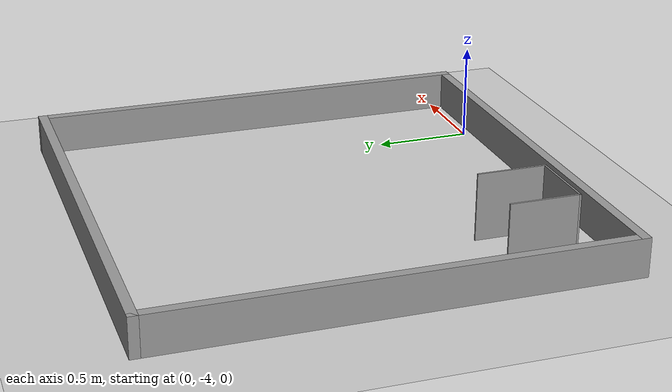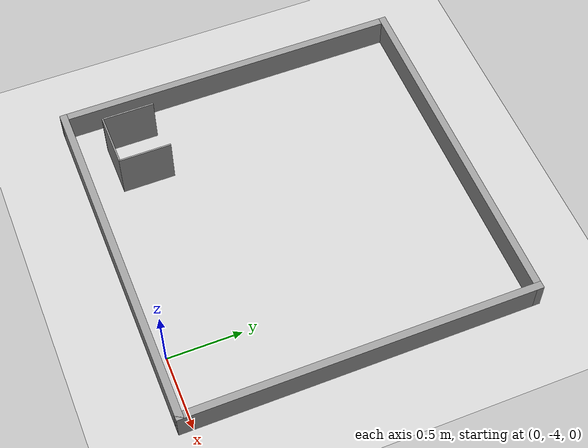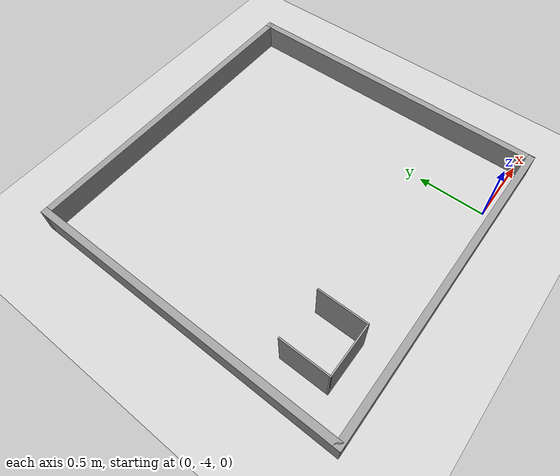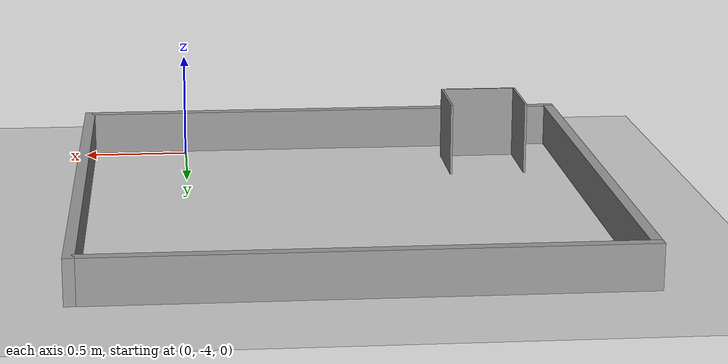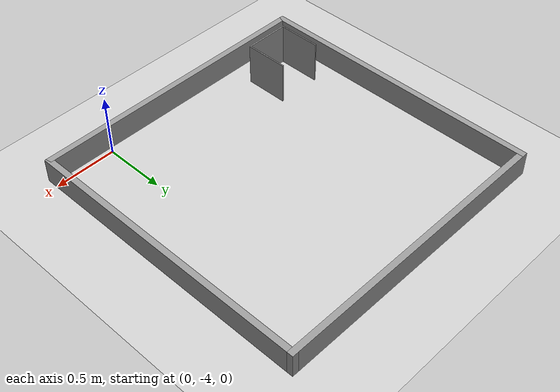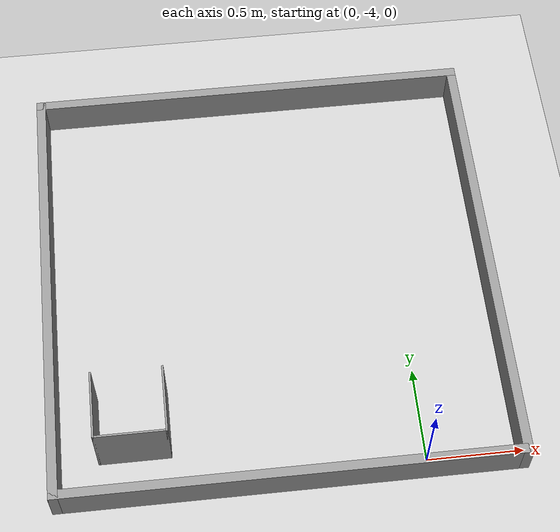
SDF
<sdf version="1.6">
 <world name="default">
  <model name="ground_plane">
   <static>1</static>
   <link name="link">
    <collision name="collision">
     <geometry><plane><normal>0 0 1</normal><size>100 100</size></plane></geometry>
     <surface><friction><ode><mu>100</mu><mu2>50</mu2></ode></friction></surface>
    </collision>
    <visual name="visual">
     <cast_shadows>0</cast_shadows>
     <geometry><plane><normal>0 0 1</normal><size>100 100</size></plane></geometry>
     <material>
      <script><uri>file://media/materials/scripts/gazebo.material</uri><name>Gazebo/Grey</name></script>
     </material>
    </visual>
   </link>
  </model>
  <model name="final_arena_0">
   <link name="Wall_0">
    <pose>0 -1.175 0 0 -0 0</pose>
    <inertial>
     <mass>1</mass>
     <inertia><ixx>1</ixx><ixy>0</ixy><ixz>0</ixz><iyy>1</iyy><iyz>0</iyz><izz>1</izz></inertia>
    </inertial>
    <visual name="Wall_0_Visual">
     <pose>0 0 0.1 0 -0 0</pose>
     <geometry><box><size>2.4 0.05 0.2</size></box></geometry>
     <material>
      <script><uri>file://media/materials/scripts/gazebo.material</uri><name>Gazebo/Grey</name></script>
      <ambient>0.3 0.3 0.3 1</ambient>
      <diffuse>0 0 0 1</diffuse>
      <specular>0 0 0 1</specular>
      <emissive>0 0 0 1</emissive>
      <shader type="vertex"><normal_map>__default__</normal_map></shader>
     </material>
    </visual>
    <collision name="Wall_0_Collision">
     <pose>0 0 0.1 0 -0 0</pose>
     <geometry><box><size>2.4 0.05 0.2</size></box></geometry>
     <surface>
      <friction>
       <ode><mu>1</mu><mu2>1</mu2><fdir1>0 0 0</fdir1><slip1>0</slip1><slip2>0</slip2></ode>
       <torsional>
        <coefficient>1</coefficient>
        <patch_radius>0</patch_radius>
        <surface_radius>0</surface_radius>
        <use_patch_radius>1</use_patch_radius>
        <ode><slip>0</slip></ode>
       </torsional>
      </friction>
      <bounce><restitution_coefficient>0</restitution_coefficient><threshold>1e+06</threshold></bounce>
      <contact>
       <collide_without_contact>0</collide_without_contact>
       <collide_without_contact_bitmask>1</collide_without_contact_bitmask>
       <collide_bitmask>1</collide_bitmask>
       <ode>
        <soft_cfm>0</soft_cfm>
        <soft_erp>0.2</soft_erp>
        <kp>1e+13</kp>
        <kd>1</kd>
        <max_vel>0.01</max_vel>
        <min_depth>0</min_depth>
       </ode>
       <bullet>
        <split_impulse>1</split_impulse>
        <split_impulse_penetration_threshold>-0.01</split_impulse_penetration_threshold>
        <soft_cfm>0</soft_cfm>
        <soft_erp>0.2</soft_erp>
        <kp>1e+13</kp>
        <kd>1</kd>
       </bullet>
      </contact>
     </surface>
    </collision>
   </link>
   <link name="Wall_11">
    <pose>-0.955 -0.7825 0 0 -0 1.5708</pose>
    <visual name="Wall_11_Visual">
     <pose>0 0 0.1725 0 -0 0</pose>
     <geometry><box><size>0.355 0.01 0.345</size></box></geometry>
     <material>
      <script><uri>file://media/materials/scripts/gazebo.material</uri><name>Gazebo/Grey</name></script>
      <ambient>1 1 1 1</ambient>
      <diffuse>0.7 0.7 0.7 1</diffuse>
      <specular>0.01 0.01 0.01 1</specular>
      <emissive>0 0 0 1</emissive>
     </material>
    </visual>
    <collision name="Wall_11_Collision">
     <pose>0 0 0.1725 0 -0 0</pose>
     <geometry><box><size>0.355 0.01 0.345</size></box></geometry>
     <surface>
      <friction>
       <ode><mu>1</mu><mu2>1</mu2><fdir1>0 0 0</fdir1><slip1>0</slip1><slip2>0</slip2></ode>
       <torsional>
        <coefficient>1</coefficient>
        <patch_radius>0</patch_radius>
        <surface_radius>0</surface_radius>
        <use_patch_radius>1</use_patch_radius>
        <ode><slip>0</slip></ode>
       </torsional>
      </friction>
      <bounce><restitution_coefficient>0</restitution_coefficient><threshold>1e+06</threshold></bounce>
      <contact>
       <collide_without_contact>0</collide_without_contact>
       <collide_without_contact_bitmask>1</collide_without_contact_bitmask>
       <collide_bitmask>1</collide_bitmask>
       <ode>
        <soft_cfm>0</soft_cfm>
        <soft_erp>0.2</soft_erp>
        <kp>1e+13</kp>
        <kd>1</kd>
        <max_vel>0.01</max_vel>
        <min_depth>0</min_depth>
       </ode>
       <bullet>
        <split_impulse>1</split_impulse>
        <split_impulse_penetration_threshold>-0.01</split_impulse_penetration_threshold>
        <soft_cfm>0</soft_cfm>
        <soft_erp>0.2</soft_erp>
        <kp>1e+13</kp>
        <kd>1</kd>
       </bullet>
      </contact>
     </surface>
    </collision>
   </link>
   <link name="Wall_13">
    <pose>-0.774 -0.955 0 0 -0 0</pose>
    <visual name="Wall_13_Visual">
     <pose>0 0 0.1725 0 -0 0</pose>
     <geometry><box><size>0.372 0.01 0.345</size></box></geometry>
     <material>
      <script><uri>file://media/materials/scripts/gazebo.material</uri><name>Gazebo/Grey</name></script>
      <ambient>1 1 1 1</ambient>
      <diffuse>0.7 0.7 0.7 1</diffuse>
      <specular>0.01 0.01 0.01 1</specular>
      <emissive>0 0 0 1</emissive>
     </material>
    </visual>
    <collision name="Wall_13_Collision">
     <pose>0 0 0.1725 0 -0 0</pose>
     <geometry><box><size>0.372 0.01 0.345</size></box></geometry>
     <surface>
      <friction>
       <ode><mu>1</mu><mu2>1</mu2><fdir1>0 0 0</fdir1><slip1>0</slip1><slip2>0</slip2></ode>
       <torsional>
        <coefficient>1</coefficient>
        <patch_radius>0</patch_radius>
        <surface_radius>0</surface_radius>
        <use_patch_radius>1</use_patch_radius>
        <ode><slip>0</slip></ode>
       </torsional>
      </friction>
      <bounce><restitution_coefficient>0</restitution_coefficient><threshold>1e+06</threshold></bounce>
      <contact>
       <collide_without_contact>0</collide_without_contact>
       <collide_without_contact_bitmask>1</collide_without_contact_bitmask>
       <collide_bitmask>1</collide_bitmask>
       <ode>
        <soft_cfm>0</soft_cfm>
        <soft_erp>0.2</soft_erp>
        <kp>1e+13</kp>
        <kd>1</kd>
        <max_vel>0.01</max_vel>
        <min_depth>0</min_depth>
       </ode>
       <bullet>
        <split_impulse>1</split_impulse>
        <split_impulse_penetration_threshold>-0.01</split_impulse_penetration_threshold>
        <soft_cfm>0</soft_cfm>
        <soft_erp>0.2</soft_erp>
        <kp>1e+13</kp>
        <kd>1</kd>
       </bullet>
      </contact>
     </surface>
    </collision>
   </link>
   <link name="Wall_15">
    <pose>-0.593 -0.7825 0 0 -0 1.5708</pose>
    <visual name="Wall_15_Visual">
     <pose>0 0 0.1725 0 -0 0</pose>
     <geometry><box><size>0.355 0.01 0.345</size></box></geometry>
     <material>
      <script><uri>file://media/materials/scripts/gazebo.material</uri><name>Gazebo/Grey</name></script>
      <ambient>1 1 1 1</ambient>
      <diffuse>0.7 0.7 0.7 1</diffuse>
      <specular>0.01 0.01 0.01 1</specular>
      <emissive>0 0 0 1</emissive>
     </material>
    </visual>
    <collision name="Wall_15_Collision">
     <pose>0 0 0.1725 0 -0 0</pose>
     <geometry><box><size>0.355 0.01 0.345</size></box></geometry>
     <surface>
      <friction>
       <ode><mu>1</mu><mu2>1</mu2><fdir1>0 0 0</fdir1><slip1>0</slip1><slip2>0</slip2></ode>
       <torsional>
        <coefficient>1</coefficient>
        <patch_radius>0</patch_radius>
        <surface_radius>0</surface_radius>
        <use_patch_radius>1</use_patch_radius>
        <ode><slip>0</slip></ode>
       </torsional>
      </friction>
      <bounce><restitution_coefficient>0</restitution_coefficient><threshold>1e+06</threshold></bounce>
      <contact>
       <collide_without_contact>0</collide_without_contact>
       <collide_without_contact_bitmask>1</collide_without_contact_bitmask>
       <collide_bitmask>1</collide_bitmask>
       <ode>
        <soft_cfm>0</soft_cfm>
        <soft_erp>0.2</soft_erp>
        <kp>1e+13</kp>
        <kd>1</kd>
        <max_vel>0.01</max_vel>
        <min_depth>0</min_depth>
       </ode>
       <bullet>
        <split_impulse>1</split_impulse>
        <split_impulse_penetration_threshold>-0.01</split_impulse_penetration_threshold>
        <soft_cfm>0</soft_cfm>
        <soft_erp>0.2</soft_erp>
        <kp>1e+13</kp>
        <kd>1</kd>
       </bullet>
      </contact>
     </surface>
    </collision>
   </link>
   <link name="Wall_2">
    <pose>1.175 0 0 0 -0 1.5708</pose>
    <inertial>
     <mass>1</mass>
     <inertia><ixx>1</ixx><ixy>0</ixy><ixz>0</ixz><iyy>1</iyy><iyz>0</iyz><izz>1</izz></inertia>
    </inertial>
    <visual name="Wall_2_Visual">
     <pose>0 0 0.1 0 -0 0</pose>
     <geometry><box><size>2.4 0.05 0.2</size></box></geometry>
     <material>
      <script><uri>file://media/materials/scripts/gazebo.material</uri><name>Gazebo/Grey</name></script>
      <ambient>0 0 0 1</ambient>
      <diffuse>0 0 0 1</diffuse>
      <specular>0 0 0 1</specular>
      <emissive>0 0 0 1</emissive>
      <shader type="vertex"><normal_map>__default__</normal_map></shader>
     </material>
    </visual>
    <collision name="Wall_2_Collision">
     <pose>0 0 0.1 0 -0 0</pose>
     <geometry><box><size>2.4 0.05 0.2</size></box></geometry>
     <surface>
      <friction>
       <ode><mu>1</mu><mu2>1</mu2><fdir1>0 0 0</fdir1><slip1>0</slip1><slip2>0</slip2></ode>
       <torsional>
        <coefficient>1</coefficient>
        <patch_radius>0</patch_radius>
        <surface_radius>0</surface_radius>
        <use_patch_radius>1</use_patch_radius>
        <ode><slip>0</slip></ode>
       </torsional>
      </friction>
      <bounce><restitution_coefficient>0</restitution_coefficient><threshold>1e+06</threshold></bounce>
      <contact>
       <collide_without_contact>0</collide_without_contact>
       <collide_without_contact_bitmask>1</collide_without_contact_bitmask>
       <collide_bitmask>1</collide_bitmask>
       <ode>
        <soft_cfm>0</soft_cfm>
        <soft_erp>0.2</soft_erp>
        <kp>1e+13</kp>
        <kd>1</kd>
        <max_vel>0.01</max_vel>
        <min_depth>0</min_depth>
       </ode>
       <bullet>
        <split_impulse>1</split_impulse>
        <split_impulse_penetration_threshold>-0.01</split_impulse_penetration_threshold>
        <soft_cfm>0</soft_cfm>
        <soft_erp>0.2</soft_erp>
        <kp>1e+13</kp>
        <kd>1</kd>
       </bullet>
      </contact>
     </surface>
    </collision>
   </link>
   <link name="Wall_4">
    <pose>0 1.175 0 0 -0 3.14159</pose>
    <inertial>
     <mass>1</mass>
     <inertia><ixx>1</ixx><ixy>0</ixy><ixz>0</ixz><iyy>1</iyy><iyz>0</iyz><izz>1</izz></inertia>
    </inertial>
    <visual name="Wall_4_Visual">
     <pose>0 0 0.1 0 -0 0</pose>
     <geometry><box><size>2.4 0.05 0.2</size></box></geometry>
     <material>
      <script><uri>file://media/materials/scripts/gazebo.material</uri><name>Gazebo/Grey</name></script>
      <ambient>0 0 0 1</ambient>
      <diffuse>0 0 0 1</diffuse>
      <specular>0 0 0 1</specular>
      <emissive>0 0 0 1</emissive>
      <shader type="vertex"><normal_map>__default__</normal_map></shader>
     </material>
    </visual>
    <collision name="Wall_4_Collision">
     <pose>0 0 0.1 0 -0 0</pose>
     <geometry><box><size>2.4 0.05 0.2</size></box></geometry>
     <surface>
      <friction>
       <ode><mu>1</mu><mu2>1</mu2><fdir1>0 0 0</fdir1><slip1>0</slip1><slip2>0</slip2></ode>
       <torsional>
        <coefficient>1</coefficient>
        <patch_radius>0</patch_radius>
        <surface_radius>0</surface_radius>
        <use_patch_radius>1</use_patch_radius>
        <ode><slip>0</slip></ode>
       </torsional>
      </friction>
      <bounce><restitution_coefficient>0</restitution_coefficient><threshold>1e+06</threshold></bounce>
      <contact>
       <collide_without_contact>0</collide_without_contact>
       <collide_without_contact_bitmask>1</collide_without_contact_bitmask>
       <collide_bitmask>1</collide_bitmask>
       <ode>
        <soft_cfm>0</soft_cfm>
        <soft_erp>0.2</soft_erp>
        <kp>1e+13</kp>
        <kd>1</kd>
        <max_vel>0.01</max_vel>
        <min_depth>0</min_depth>
       </ode>
       <bullet>
        <split_impulse>1</split_impulse>
        <split_impulse_penetration_threshold>-0.01</split_impulse_penetration_threshold>
        <soft_cfm>0</soft_cfm>
        <soft_erp>0.2</soft_erp>
        <kp>1e+13</kp>
        <kd>1</kd>
       </bullet>
      </contact>
     </surface>
    </collision>
   </link>
   <link name="Wall_6">
    <pose>-1.175 0 0 0 0 -1.5708</pose>
    <inertial>
     <mass>1</mass>
     <inertia><ixx>1</ixx><ixy>0</ixy><ixz>0</ixz><iyy>1</iyy><iyz>0</iyz><izz>1</izz></inertia>
    </inertial>
    <visual name="Wall_6_Visual">
     <pose>0 0 0.1 0 -0 0</pose>
     <geometry><box><size>2.4 0.05 0.2</size></box></geometry>
     <material>
      <script><uri>file://media/materials/scripts/gazebo.material</uri><name>Gazebo/Grey</name></script>
      <ambient>0 0 0 1</ambient>
      <diffuse>0 0 0 1</diffuse>
      <specular>0 0 0 1</specular>
      <emissive>0 0 0 1</emissive>
      <shader type="vertex"><normal_map>__default__</normal_map></shader>
     </material>
    </visual>
    <collision name="Wall_6_Collision">
     <pose>0 0 0.1 0 -0 0</pose>
     <geometry><box><size>2.4 0.05 0.2</size></box></geometry>
     <surface>
      <friction>
       <ode><mu>1</mu><mu2>1</mu2><fdir1>0 0 0</fdir1><slip1>0</slip1><slip2>0</slip2></ode>
       <torsional>
        <coefficient>1</coefficient>
        <patch_radius>0</patch_radius>
        <surface_radius>0</surface_radius>
        <use_patch_radius>1</use_patch_radius>
        <ode><slip>0</slip></ode>
       </torsional>
      </friction>
      <bounce><restitution_coefficient>0</restitution_coefficient><threshold>1e+06</threshold></bounce>
      <contact>
       <collide_without_contact>0</collide_without_contact>
       <collide_without_contact_bitmask>1</collide_without_contact_bitmask>
       <collide_bitmask>1</collide_bitmask>
       <ode>
        <soft_cfm>0</soft_cfm>
        <soft_erp>0.2</soft_erp>
        <kp>1e+13</kp>
        <kd>1</kd>
        <max_vel>0.01</max_vel>
        <min_depth>0</min_depth>
       </ode>
       <bullet>
        <split_impulse>1</split_impulse>
        <split_impulse_penetration_threshold>-0.01</split_impulse_penetration_threshold>
        <soft_cfm>0</soft_cfm>
        <soft_erp>0.2</soft_erp>
        <kp>1e+13</kp>
        <kd>1</kd>
       </bullet>
      </contact>
     </surface>
    </collision>
   </link>
   <static>1</static>
   <pose>-0.695 -2.895 0 0 -0 0</pose>
  </model>
 </world>
</sdf>
